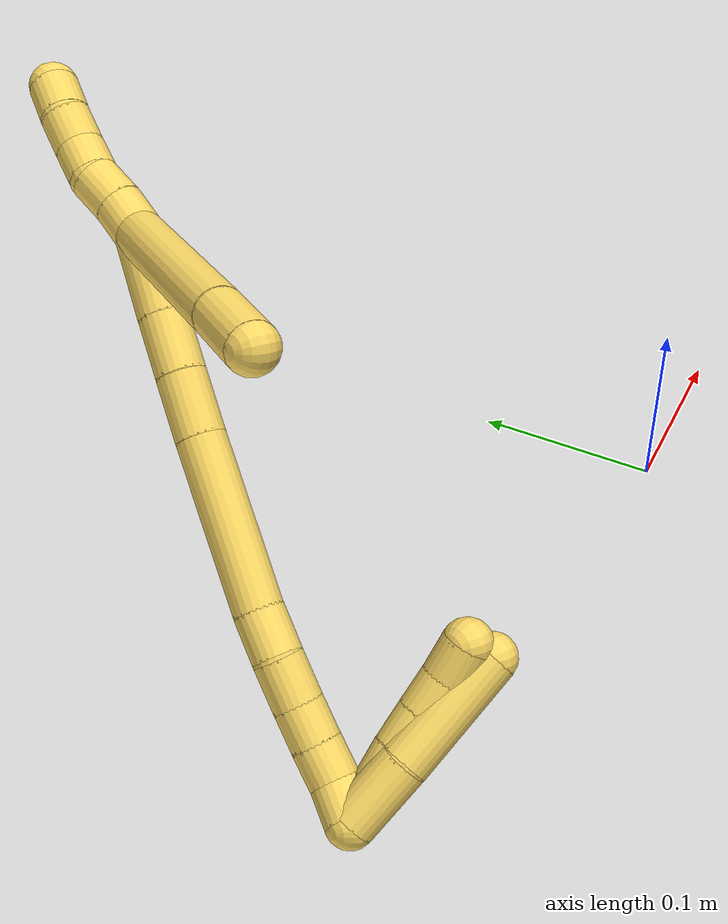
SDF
<sdf version="1.7">
 <world name="default">
  <model name="5">
   <static>0</static>
   <link name="5">
    <collision name="collision-cylinder-e_1_2_8">
     <pose>0.009123 -0.054301 0.015988 1.28445 0.15979 0.119636</pose>
     <geometry><cylinder><radius>0.0125</radius><length>0.114672</length></cylinder></geometry>
     <surface>
      <friction><ode><mu>1.16</mu><mu2>1.16</mu2><slip1>0</slip1><slip2>0</slip2></ode></friction>
      <contact><ode><kp>1e+06</kp><kd>1</kd><max_vel>0</max_vel><min_depth>0.001</min_depth></ode></contact>
     </surface>
    </collision>
    <visual name="visual-cylinder-e_1_2_8">
     <pose>0.009123 -0.054301 0.015988 1.28445 0.15979 0.119636</pose>
     <geometry><cylinder><radius>0.0125</radius><length>0.114672</length></cylinder></geometry>
     <material><ambient>1 0.858824 0.4 1</ambient></material>
    </visual>
    <collision name="collision-cylinder-e_2_8_6">
     <pose>0.019926 -0.125675 0.03618 1.32939 0.095276 0.074686</pose>
     <geometry><cylinder><radius>0.0125</radius><length>0.035328</length></cylinder></geometry>
     <surface>
      <friction><ode><mu>1.16</mu><mu2>1.16</mu2><slip1>0</slip1><slip2>0</slip2></ode></friction>
      <contact><ode><kp>1e+06</kp><kd>1</kd><max_vel>0</max_vel><min_depth>0.001</min_depth></ode></contact>
     </surface>
    </collision>
    <visual name="visual-cylinder-e_2_8_6">
     <pose>0.019926 -0.125675 0.03618 1.32939 0.095276 0.074686</pose>
     <geometry><cylinder><radius>0.0125</radius><length>0.035328</length></cylinder></geometry>
     <material><ambient>1 0.858824 0.4 1</ambient></material>
    </visual>
    <collision name="collision-cylinder-e_1_2_9">
     <pose>0.003518 0.009348 0.000493 -1.51814 0.359475 -0.341392</pose>
     <geometry><cylinder><radius>0.0125</radius><length>0.02</length></cylinder></geometry>
     <surface>
      <friction><ode><mu>1.16</mu><mu2>1.16</mu2><slip1>0</slip1><slip2>0</slip2></ode></friction>
      <contact><ode><kp>1e+06</kp><kd>1</kd><max_vel>0</max_vel><min_depth>0.001</min_depth></ode></contact>
     </surface>
    </collision>
    <visual name="visual-cylinder-e_1_2_9">
     <pose>0.003518 0.009348 0.000493 -1.51814 0.359475 -0.341392</pose>
     <geometry><cylinder><radius>0.0125</radius><length>0.02</length></cylinder></geometry>
     <material><ambient>1 0.858824 0.4 1</ambient></material>
    </visual>
    <collision name="collision-cylinder-e_2_9_10">
     <pose>0.010321 0.027976 0.002743 -1.38363 0.334744 -0.278111</pose>
     <geometry><cylinder><radius>0.0125</radius><length>0.02</length></cylinder></geometry>
     <surface>
      <friction><ode><mu>1.16</mu><mu2>1.16</mu2><slip1>0</slip1><slip2>0</slip2></ode></friction>
      <contact><ode><kp>1e+06</kp><kd>1</kd><max_vel>0</max_vel><min_depth>0.001</min_depth></ode></contact>
     </surface>
    </collision>
    <visual name="visual-cylinder-e_2_9_10">
     <pose>0.010321 0.027976 0.002743 -1.38363 0.334744 -0.278111</pose>
     <geometry><cylinder><radius>0.0125</radius><length>0.02</length></cylinder></geometry>
     <material><ambient>1 0.858824 0.4 1</ambient></material>
    </visual>
    <collision name="collision-cylinder-e_3_10_11">
     <pose>0.017047 0.046557 0.00322 -1.70754 0.351248 -0.401596</pose>
     <geometry><cylinder><radius>0.0125</radius><length>0.02</length></cylinder></geometry>
     <surface>
      <friction><ode><mu>1.16</mu><mu2>1.16</mu2><slip1>0</slip1><slip2>0</slip2></ode></friction>
      <contact><ode><kp>1e+06</kp><kd>1</kd><max_vel>0</max_vel><min_depth>0.001</min_depth></ode></contact>
     </surface>
    </collision>
    <visual name="visual-cylinder-e_3_10_11">
     <pose>0.017047 0.046557 0.00322 -1.70754 0.351248 -0.401596</pose>
     <geometry><cylinder><radius>0.0125</radius><length>0.02</length></cylinder></geometry>
     <material><ambient>1 0.858824 0.4 1</ambient></material>
    </visual>
    <collision name="collision-cylinder-e_4_11_12">
     <pose>0.02581 0.064325 0.001891 -1.57664 0.561289 -0.564406</pose>
     <geometry><cylinder><radius>0.0125</radius><length>0.02</length></cylinder></geometry>
     <surface>
      <friction><ode><mu>1.16</mu><mu2>1.16</mu2><slip1>0</slip1><slip2>0</slip2></ode></friction>
      <contact><ode><kp>1e+06</kp><kd>1</kd><max_vel>0</max_vel><min_depth>0.001</min_depth></ode></contact>
     </surface>
    </collision>
    <visual name="visual-cylinder-e_4_11_12">
     <pose>0.02581 0.064325 0.001891 -1.57664 0.561289 -0.564406</pose>
     <geometry><cylinder><radius>0.0125</radius><length>0.02</length></cylinder></geometry>
     <material><ambient>1 0.858824 0.4 1</ambient></material>
    </visual>
    <collision name="collision-cylinder-e_5_12_5">
     <pose>0.035278 0.08176 0.000301 -1.74086 0.427409 -0.503977</pose>
     <geometry><cylinder><radius>0.0125</radius><length>0.02</length></cylinder></geometry>
     <surface>
      <friction><ode><mu>1.16</mu><mu2>1.16</mu2><slip1>0</slip1><slip2>0</slip2></ode></friction>
      <contact><ode><kp>1e+06</kp><kd>1</kd><max_vel>0</max_vel><min_depth>0.001</min_depth></ode></contact>
     </surface>
    </collision>
    <visual name="visual-cylinder-e_5_12_5">
     <pose>0.035278 0.08176 0.000301 -1.74086 0.427409 -0.503977</pose>
     <geometry><cylinder><radius>0.0125</radius><length>0.02</length></cylinder></geometry>
     <material><ambient>1 0.858824 0.4 1</ambient></material>
    </visual>
    <collision name="collision-cylinder-e_1_2_13">
     <pose>-0.014289 -0.015883 0.001438 1.4805 -0.730588 -0.672269</pose>
     <geometry><cylinder><radius>0.0125</radius><length>0.042825</length></cylinder></geometry>
     <surface>
      <friction><ode><mu>1.16</mu><mu2>1.16</mu2><slip1>0</slip1><slip2>0</slip2></ode></friction>
      <contact><ode><kp>1e+06</kp><kd>1</kd><max_vel>0</max_vel><min_depth>0.001</min_depth></ode></contact>
     </surface>
    </collision>
    <visual name="visual-cylinder-e_1_2_13">
     <pose>-0.014289 -0.015883 0.001438 1.4805 -0.730588 -0.672269</pose>
     <geometry><cylinder><radius>0.0125</radius><length>0.042825</length></cylinder></geometry>
     <material><ambient>1 0.858824 0.4 1</ambient></material>
    </visual>
    <collision name="collision-cylinder-e_2_13_14">
     <pose>-0.038298 -0.043378 0.003953 1.47833 -0.694864 -0.637667</pose>
     <geometry><cylinder><radius>0.0125</radius><length>0.030364</length></cylinder></geometry>
     <surface>
      <friction><ode><mu>1.16</mu><mu2>1.16</mu2><slip1>0</slip1><slip2>0</slip2></ode></friction>
      <contact><ode><kp>1e+06</kp><kd>1</kd><max_vel>0</max_vel><min_depth>0.001</min_depth></ode></contact>
     </surface>
    </collision>
    <visual name="visual-cylinder-e_2_13_14">
     <pose>-0.038298 -0.043378 0.003953 1.47833 -0.694864 -0.637667</pose>
     <geometry><cylinder><radius>0.0125</radius><length>0.030364</length></cylinder></geometry>
     <material><ambient>1 0.858824 0.4 1</ambient></material>
    </visual>
    <collision name="collision-cylinder-e_3_14_15">
     <pose>-0.05866 -0.067008 0.005783 1.50821 -0.723676 -0.683175</pose>
     <geometry><cylinder><radius>0.0125</radius><length>0.032139</length></cylinder></geometry>
     <surface>
      <friction><ode><mu>1.16</mu><mu2>1.16</mu2><slip1>0</slip1><slip2>0</slip2></ode></friction>
      <contact><ode><kp>1e+06</kp><kd>1</kd><max_vel>0</max_vel><min_depth>0.001</min_depth></ode></contact>
     </surface>
    </collision>
    <visual name="visual-cylinder-e_3_14_15">
     <pose>-0.05866 -0.067008 0.005783 1.50821 -0.723676 -0.683175</pose>
     <geometry><cylinder><radius>0.0125</radius><length>0.032139</length></cylinder></geometry>
     <material><ambient>1 0.858824 0.4 1</ambient></material>
    </visual>
    <collision name="collision-cylinder-e_4_15_16">
     <pose>-0.09786 -0.111859 0.007775 1.53308 -0.715577 -0.691176</pose>
     <geometry><cylinder><radius>0.0125</radius><length>0.087067</length></cylinder></geometry>
     <surface>
      <friction><ode><mu>1.16</mu><mu2>1.16</mu2><slip1>0</slip1><slip2>0</slip2></ode></friction>
      <contact><ode><kp>1e+06</kp><kd>1</kd><max_vel>0</max_vel><min_depth>0.001</min_depth></ode></contact>
     </surface>
    </collision>
    <visual name="visual-cylinder-e_4_15_16">
     <pose>-0.09786 -0.111859 0.007775 1.53308 -0.715577 -0.691176</pose>
     <geometry><cylinder><radius>0.0125</radius><length>0.087067</length></cylinder></geometry>
     <material><ambient>1 0.858824 0.4 1</ambient></material>
    </visual>
    <collision name="collision-cylinder-e_5_16_17">
     <pose>-0.133294 -0.154414 0.009215 1.55014 -0.615283 -0.603461</pose>
     <geometry><cylinder><radius>0.0125</radius><length>0.023819</length></cylinder></geometry>
     <surface>
      <friction><ode><mu>1.16</mu><mu2>1.16</mu2><slip1>0</slip1><slip2>0</slip2></ode></friction>
      <contact><ode><kp>1e+06</kp><kd>1</kd><max_vel>0</max_vel><min_depth>0.001</min_depth></ode></contact>
     </surface>
    </collision>
    <visual name="visual-cylinder-e_5_16_17">
     <pose>-0.133294 -0.154414 0.009215 1.55014 -0.615283 -0.603461</pose>
     <geometry><cylinder><radius>0.0125</radius><length>0.023819</length></cylinder></geometry>
     <material><ambient>1 0.858824 0.4 1</ambient></material>
    </visual>
    <collision name="collision-cylinder-e_6_17_18">
     <pose>-0.14811 -0.17277 0.00827 1.70275 -0.739364 -0.83291</pose>
     <geometry><cylinder><radius>0.0125</radius><length>0.023571</length></cylinder></geometry>
     <surface>
      <friction><ode><mu>1.16</mu><mu2>1.16</mu2><slip1>0</slip1><slip2>0</slip2></ode></friction>
      <contact><ode><kp>1e+06</kp><kd>1</kd><max_vel>0</max_vel><min_depth>0.001</min_depth></ode></contact>
     </surface>
    </collision>
    <visual name="visual-cylinder-e_6_17_18">
     <pose>-0.14811 -0.17277 0.00827 1.70275 -0.739364 -0.83291</pose>
     <geometry><cylinder><radius>0.0125</radius><length>0.023571</length></cylinder></geometry>
     <material><ambient>1 0.858824 0.4 1</ambient></material>
    </visual>
    <collision name="collision-cylinder-e_7_18_19">
     <pose>-0.162478 -0.189093 0.006246 1.68449 -0.69299 -0.768994</pose>
     <geometry><cylinder><radius>0.0125</radius><length>0.020122</length></cylinder></geometry>
     <surface>
      <friction><ode><mu>1.16</mu><mu2>1.16</mu2><slip1>0</slip1><slip2>0</slip2></ode></friction>
      <contact><ode><kp>1e+06</kp><kd>1</kd><max_vel>0</max_vel><min_depth>0.001</min_depth></ode></contact>
     </surface>
    </collision>
    <visual name="visual-cylinder-e_7_18_19">
     <pose>-0.162478 -0.189093 0.006246 1.68449 -0.69299 -0.768994</pose>
     <geometry><cylinder><radius>0.0125</radius><length>0.020122</length></cylinder></geometry>
     <material><ambient>1 0.858824 0.4 1</ambient></material>
    </visual>
    <collision name="collision-cylinder-e_8_19_20">
     <pose>-0.174913 -0.204763 0.004555 1.67238 -0.642797 -0.706305</pose>
     <geometry><cylinder><radius>0.0125</radius><length>0.020044</length></cylinder></geometry>
     <surface>
      <friction><ode><mu>1.16</mu><mu2>1.16</mu2><slip1>0</slip1><slip2>0</slip2></ode></friction>
      <contact><ode><kp>1e+06</kp><kd>1</kd><max_vel>0</max_vel><min_depth>0.001</min_depth></ode></contact>
     </surface>
    </collision>
    <visual name="visual-cylinder-e_8_19_20">
     <pose>-0.174913 -0.204763 0.004555 1.67238 -0.642797 -0.706305</pose>
     <geometry><cylinder><radius>0.0125</radius><length>0.020044</length></cylinder></geometry>
     <material><ambient>1 0.858824 0.4 1</ambient></material>
    </visual>
    <collision name="collision-cylinder-e_9_20_1">
     <pose>-0.184964 -0.221757 0.005443 1.38417 -0.415235 -0.345713</pose>
     <geometry><cylinder><radius>0.0125</radius><length>0.02005</length></cylinder></geometry>
     <surface>
      <friction><ode><mu>1.16</mu><mu2>1.16</mu2><slip1>0</slip1><slip2>0</slip2></ode></friction>
      <contact><ode><kp>1e+06</kp><kd>1</kd><max_vel>0</max_vel><min_depth>0.001</min_depth></ode></contact>
     </surface>
    </collision>
    <visual name="visual-cylinder-e_9_20_1">
     <pose>-0.184964 -0.221757 0.005443 1.38417 -0.415235 -0.345713</pose>
     <geometry><cylinder><radius>0.0125</radius><length>0.02005</length></cylinder></geometry>
     <material><ambient>1 0.858824 0.4 1</ambient></material>
    </visual>
    <collision name="collision-cylinder-e_1_1_21">
     <pose>-0.183142 -0.22911 -0.000781 -2.93499 0.626898 -2.52249</pose>
     <geometry><cylinder><radius>0.0125</radius><length>0.02</length></cylinder></geometry>
     <surface>
      <friction><ode><mu>1.16</mu><mu2>1.16</mu2><slip1>0</slip1><slip2>0</slip2></ode></friction>
      <contact><ode><kp>1e+06</kp><kd>1</kd><max_vel>0</max_vel><min_depth>0.001</min_depth></ode></contact>
     </surface>
    </collision>
    <visual name="visual-cylinder-e_1_1_21">
     <pose>-0.183142 -0.22911 -0.000781 -2.93499 0.626898 -2.52249</pose>
     <geometry><cylinder><radius>0.0125</radius><length>0.02</length></cylinder></geometry>
     <material><ambient>1 0.858824 0.4 1</ambient></material>
    </visual>
    <collision name="collision-cylinder-e_2_21_22">
     <pose>-0.169247 -0.226067 -0.014507 -2.90774 0.932089 -2.68276</pose>
     <geometry><cylinder><radius>0.0125</radius><length>0.02</length></cylinder></geometry>
     <surface>
      <friction><ode><mu>1.16</mu><mu2>1.16</mu2><slip1>0</slip1><slip2>0</slip2></ode></friction>
      <contact><ode><kp>1e+06</kp><kd>1</kd><max_vel>0</max_vel><min_depth>0.001</min_depth></ode></contact>
     </surface>
    </collision>
    <visual name="visual-cylinder-e_2_21_22">
     <pose>-0.169247 -0.226067 -0.014507 -2.90774 0.932089 -2.68276</pose>
     <geometry><cylinder><radius>0.0125</radius><length>0.02</length></cylinder></geometry>
     <material><ambient>1 0.858824 0.4 1</ambient></material>
    </visual>
    <collision name="collision-cylinder-e_3_22_23">
     <pose>-0.153068 -0.224052 -0.026065 -3.03209 0.952862 -2.93</pose>
     <geometry><cylinder><radius>0.0125</radius><length>0.02</length></cylinder></geometry>
     <surface>
      <friction><ode><mu>1.16</mu><mu2>1.16</mu2><slip1>0</slip1><slip2>0</slip2></ode></friction>
      <contact><ode><kp>1e+06</kp><kd>1</kd><max_vel>0</max_vel><min_depth>0.001</min_depth></ode></contact>
     </surface>
    </collision>
    <visual name="visual-cylinder-e_3_22_23">
     <pose>-0.153068 -0.224052 -0.026065 -3.03209 0.952862 -2.93</pose>
     <geometry><cylinder><radius>0.0125</radius><length>0.02</length></cylinder></geometry>
     <material><ambient>1 0.858824 0.4 1</ambient></material>
    </visual>
    <collision name="collision-cylinder-e_4_23_24">
     <pose>-0.136537 -0.223096 -0.037271 -3.08244 0.993559 -3.03255</pose>
     <geometry><cylinder><radius>0.0125</radius><length>0.02</length></cylinder></geometry>
     <surface>
      <friction><ode><mu>1.16</mu><mu2>1.16</mu2><slip1>0</slip1><slip2>0</slip2></ode></friction>
      <contact><ode><kp>1e+06</kp><kd>1</kd><max_vel>0</max_vel><min_depth>0.001</min_depth></ode></contact>
     </surface>
    </collision>
    <visual name="visual-cylinder-e_4_23_24">
     <pose>-0.136537 -0.223096 -0.037271 -3.08244 0.993559 -3.03255</pose>
     <geometry><cylinder><radius>0.0125</radius><length>0.02</length></cylinder></geometry>
     <material><ambient>1 0.858824 0.4 1</ambient></material>
    </visual>
    <collision name="collision-cylinder-e_5_24_4">
     <pose>-0.118993 -0.222775 -0.046721 3.14135 1.15898 3.14122</pose>
     <geometry><cylinder><radius>0.0125</radius><length>0.02</length></cylinder></geometry>
     <surface>
      <friction><ode><mu>1.16</mu><mu2>1.16</mu2><slip1>0</slip1><slip2>0</slip2></ode></friction>
      <contact><ode><kp>1e+06</kp><kd>1</kd><max_vel>0</max_vel><min_depth>0.001</min_depth></ode></contact>
     </surface>
    </collision>
    <visual name="visual-cylinder-e_5_24_4">
     <pose>-0.118993 -0.222775 -0.046721 3.14135 1.15898 3.14122</pose>
     <geometry><cylinder><radius>0.0125</radius><length>0.02</length></cylinder></geometry>
     <material><ambient>1 0.858824 0.4 1</ambient></material>
    </visual>
    <collision name="collision-cylinder-e_1_1_25">
     <pose>-0.1749 -0.231639 -0.00471 3.06847 0.87065 2.98463</pose>
     <geometry><cylinder><radius>0.0125</radius><length>0.036897</length></cylinder></geometry>
     <surface>
      <friction><ode><mu>1.16</mu><mu2>1.16</mu2><slip1>0</slip1><slip2>0</slip2></ode></friction>
      <contact><ode><kp>1e+06</kp><kd>1</kd><max_vel>0</max_vel><min_depth>0.001</min_depth></ode></contact>
     </surface>
    </collision>
    <visual name="visual-cylinder-e_1_1_25">
     <pose>-0.1749 -0.231639 -0.00471 3.06847 0.87065 2.98463</pose>
     <geometry><cylinder><radius>0.0125</radius><length>0.036897</length></cylinder></geometry>
     <material><ambient>1 0.858824 0.4 1</ambient></material>
    </visual>
    <collision name="collision-cylinder-e_2_25_3">
     <pose>-0.138533 -0.231654 -0.03891 -3.10342 0.783094 -3.04918</pose>
     <geometry><cylinder><radius>0.0125</radius><length>0.063103</length></cylinder></geometry>
     <surface>
      <friction><ode><mu>1.16</mu><mu2>1.16</mu2><slip1>0</slip1><slip2>0</slip2></ode></friction>
      <contact><ode><kp>1e+06</kp><kd>1</kd><max_vel>0</max_vel><min_depth>0.001</min_depth></ode></contact>
     </surface>
    </collision>
    <visual name="visual-cylinder-e_2_25_3">
     <pose>-0.138533 -0.231654 -0.03891 -3.10342 0.783094 -3.04918</pose>
     <geometry><cylinder><radius>0.0125</radius><length>0.063103</length></cylinder></geometry>
     <material><ambient>1 0.858824 0.4 1</ambient></material>
    </visual>
    <collision name="collision-sphere-3">
     <pose>-0.116274 -0.230801 -0.061256 0 -0 0</pose>
     <geometry><sphere><radius>0.0125</radius></sphere></geometry>
     <surface>
      <friction><ode><mu>1.16</mu><mu2>1.16</mu2><slip1>0</slip1><slip2>0</slip2></ode></friction>
      <contact><ode><kp>1e+06</kp><kd>1</kd><max_vel>0</max_vel><min_depth>0.001</min_depth></ode></contact>
     </surface>
    </collision>
    <visual name="visual-sphere-3">
     <pose>-0.116274 -0.230801 -0.061256 0 -0 0</pose>
     <geometry><sphere><radius>0.0125</radius></sphere></geometry>
     <material><ambient>1 0.858824 0.4 1</ambient></material>
    </visual>
    <collision name="collision-sphere-25">
     <pose>-0.160792 -0.232508 -0.016565 0 -0 0</pose>
     <geometry><sphere><radius>0.0125</radius></sphere></geometry>
     <surface>
      <friction><ode><mu>1.16</mu><mu2>1.16</mu2><slip1>0</slip1><slip2>0</slip2></ode></friction>
      <contact><ode><kp>1e+06</kp><kd>1</kd><max_vel>0</max_vel><min_depth>0.001</min_depth></ode></contact>
     </surface>
    </collision>
    <visual name="visual-sphere-25">
     <pose>-0.160792 -0.232508 -0.016565 0 -0 0</pose>
     <geometry><sphere><radius>0.0125</radius></sphere></geometry>
     <material><ambient>1 0.858824 0.4 1</ambient></material>
    </visual>
    <collision name="collision-sphere-4">
     <pose>-0.109829 -0.222776 -0.050724 0 -0 0</pose>
     <geometry><sphere><radius>0.0125</radius></sphere></geometry>
     <surface>
      <friction><ode><mu>1.16</mu><mu2>1.16</mu2><slip1>0</slip1><slip2>0</slip2></ode></friction>
      <contact><ode><kp>1e+06</kp><kd>1</kd><max_vel>0</max_vel><min_depth>0.001</min_depth></ode></contact>
     </surface>
    </collision>
    <visual name="visual-sphere-4">
     <pose>-0.109829 -0.222776 -0.050724 0 -0 0</pose>
     <geometry><sphere><radius>0.0125</radius></sphere></geometry>
     <material><ambient>1 0.858824 0.4 1</ambient></material>
    </visual>
    <collision name="collision-sphere-24">
     <pose>-0.128157 -0.222774 -0.042719 0 -0 0</pose>
     <geometry><sphere><radius>0.0125</radius></sphere></geometry>
     <surface>
      <friction><ode><mu>1.16</mu><mu2>1.16</mu2><slip1>0</slip1><slip2>0</slip2></ode></friction>
      <contact><ode><kp>1e+06</kp><kd>1</kd><max_vel>0</max_vel><min_depth>0.001</min_depth></ode></contact>
     </surface>
    </collision>
    <visual name="visual-sphere-24">
     <pose>-0.128157 -0.222774 -0.042719 0 -0 0</pose>
     <geometry><sphere><radius>0.0125</radius></sphere></geometry>
     <material><ambient>1 0.858824 0.4 1</ambient></material>
    </visual>
    <collision name="collision-sphere-23">
     <pose>-0.144917 -0.223419 -0.031824 0 -0 0</pose>
     <geometry><sphere><radius>0.0125</radius></sphere></geometry>
     <surface>
      <friction><ode><mu>1.16</mu><mu2>1.16</mu2><slip1>0</slip1><slip2>0</slip2></ode></friction>
      <contact><ode><kp>1e+06</kp><kd>1</kd><max_vel>0</max_vel><min_depth>0.001</min_depth></ode></contact>
     </surface>
    </collision>
    <visual name="visual-sphere-23">
     <pose>-0.144917 -0.223419 -0.031824 0 -0 0</pose>
     <geometry><sphere><radius>0.0125</radius></sphere></geometry>
     <material><ambient>1 0.858824 0.4 1</ambient></material>
    </visual>
    <collision name="collision-sphere-22">
     <pose>-0.161218 -0.224685 -0.020306 0 -0 0</pose>
     <geometry><sphere><radius>0.0125</radius></sphere></geometry>
     <surface>
      <friction><ode><mu>1.16</mu><mu2>1.16</mu2><slip1>0</slip1><slip2>0</slip2></ode></friction>
      <contact><ode><kp>1e+06</kp><kd>1</kd><max_vel>0</max_vel><min_depth>0.001</min_depth></ode></contact>
     </surface>
    </collision>
    <visual name="visual-sphere-22">
     <pose>-0.161218 -0.224685 -0.020306 0 -0 0</pose>
     <geometry><sphere><radius>0.0125</radius></sphere></geometry>
     <material><ambient>1 0.858824 0.4 1</ambient></material>
    </visual>
    <collision name="collision-sphere-21">
     <pose>-0.177276 -0.227448 -0.008707 0 -0 0</pose>
     <geometry><sphere><radius>0.0125</radius></sphere></geometry>
     <surface>
      <friction><ode><mu>1.16</mu><mu2>1.16</mu2><slip1>0</slip1><slip2>0</slip2></ode></friction>
      <contact><ode><kp>1e+06</kp><kd>1</kd><max_vel>0</max_vel><min_depth>0.001</min_depth></ode></contact>
     </surface>
    </collision>
    <visual name="visual-sphere-21">
     <pose>-0.177276 -0.227448 -0.008707 0 -0 0</pose>
     <geometry><sphere><radius>0.0125</radius></sphere></geometry>
     <material><ambient>1 0.858824 0.4 1</ambient></material>
    </visual>
    <collision name="collision-sphere-1">
     <pose>-0.189008 -0.230771 0.007145 0 -0 0</pose>
     <geometry><sphere><radius>0.0125</radius></sphere></geometry>
     <surface>
      <friction><ode><mu>1.16</mu><mu2>1.16</mu2><slip1>0</slip1><slip2>0</slip2></ode></friction>
      <contact><ode><kp>1e+06</kp><kd>1</kd><max_vel>0</max_vel><min_depth>0.001</min_depth></ode></contact>
     </surface>
    </collision>
    <visual name="visual-sphere-1">
     <pose>-0.189008 -0.230771 0.007145 0 -0 0</pose>
     <geometry><sphere><radius>0.0125</radius></sphere></geometry>
     <material><ambient>1 0.858824 0.4 1</ambient></material>
    </visual>
    <collision name="collision-sphere-11">
     <pose>0.020488 0.055859 0.001941 0 -0 0</pose>
     <geometry><sphere><radius>0.0125</radius></sphere></geometry>
     <surface>
      <friction><ode><mu>1.16</mu><mu2>1.16</mu2><slip1>0</slip1><slip2>0</slip2></ode></friction>
      <contact><ode><kp>1e+06</kp><kd>1</kd><max_vel>0</max_vel><min_depth>0.001</min_depth></ode></contact>
     </surface>
    </collision>
    <visual name="visual-sphere-11">
     <pose>0.020488 0.055859 0.001941 0 -0 0</pose>
     <geometry><sphere><radius>0.0125</radius></sphere></geometry>
     <material><ambient>1 0.858824 0.4 1</ambient></material>
    </visual>
    <collision name="collision-sphere-10">
     <pose>0.013606 0.037256 0.0045 0 -0 0</pose>
     <geometry><sphere><radius>0.0125</radius></sphere></geometry>
     <surface>
      <friction><ode><mu>1.16</mu><mu2>1.16</mu2><slip1>0</slip1><slip2>0</slip2></ode></friction>
      <contact><ode><kp>1e+06</kp><kd>1</kd><max_vel>0</max_vel><min_depth>0.001</min_depth></ode></contact>
     </surface>
    </collision>
    <visual name="visual-sphere-10">
     <pose>0.013606 0.037256 0.0045 0 -0 0</pose>
     <geometry><sphere><radius>0.0125</radius></sphere></geometry>
     <material><ambient>1 0.858824 0.4 1</ambient></material>
    </visual>
    <collision name="collision-sphere-6">
     <pose>0.021606 -0.142749 0.040384 0 -0 0</pose>
     <geometry><sphere><radius>0.0125</radius></sphere></geometry>
     <surface>
      <friction><ode><mu>1.16</mu><mu2>1.16</mu2><slip1>0</slip1><slip2>0</slip2></ode></friction>
      <contact><ode><kp>1e+06</kp><kd>1</kd><max_vel>0</max_vel><min_depth>0.001</min_depth></ode></contact>
     </surface>
    </collision>
    <visual name="visual-sphere-6">
     <pose>0.021606 -0.142749 0.040384 0 -0 0</pose>
     <geometry><sphere><radius>0.0125</radius></sphere></geometry>
     <material><ambient>1 0.858824 0.4 1</ambient></material>
    </visual>
    <collision name="collision-sphere-9">
     <pose>0.007036 0.018696 0.000985 0 -0 0</pose>
     <geometry><sphere><radius>0.0125</radius></sphere></geometry>
     <surface>
      <friction><ode><mu>1.16</mu><mu2>1.16</mu2><slip1>0</slip1><slip2>0</slip2></ode></friction>
      <contact><ode><kp>1e+06</kp><kd>1</kd><max_vel>0</max_vel><min_depth>0.001</min_depth></ode></contact>
     </surface>
    </collision>
    <visual name="visual-sphere-9">
     <pose>0.007036 0.018696 0.000985 0 -0 0</pose>
     <geometry><sphere><radius>0.0125</radius></sphere></geometry>
     <material><ambient>1 0.858824 0.4 1</ambient></material>
    </visual>
    <collision name="collision-sphere-2">
     <geometry><sphere><radius>0.0125</radius></sphere></geometry>
     <surface>
      <friction><ode><mu>1.16</mu><mu2>1.16</mu2><slip1>0</slip1><slip2>0</slip2></ode></friction>
      <contact><ode><kp>1e+06</kp><kd>1</kd><max_vel>0</max_vel><min_depth>0.001</min_depth></ode></contact>
     </surface>
    </collision>
    <visual name="visual-sphere-2">
     <geometry><sphere><radius>0.0125</radius></sphere></geometry>
     <material><ambient>1 0.858824 0.4 1</ambient></material>
    </visual>
    <collision name="collision-sphere-19">
     <pose>-0.168906 -0.196783 0.005368 0 -0 0</pose>
     <geometry><sphere><radius>0.0125</radius></sphere></geometry>
     <surface>
      <friction><ode><mu>1.16</mu><mu2>1.16</mu2><slip1>0</slip1><slip2>0</slip2></ode></friction>
      <contact><ode><kp>1e+06</kp><kd>1</kd><max_vel>0</max_vel><min_depth>0.001</min_depth></ode></contact>
     </surface>
    </collision>
    <visual name="visual-sphere-19">
     <pose>-0.168906 -0.196783 0.005368 0 -0 0</pose>
     <geometry><sphere><radius>0.0125</radius></sphere></geometry>
     <material><ambient>1 0.858824 0.4 1</ambient></material>
    </visual>
    <collision name="collision-sphere-8">
     <pose>0.018246 -0.108601 0.031977 0 -0 0</pose>
     <geometry><sphere><radius>0.0125</radius></sphere></geometry>
     <surface>
      <friction><ode><mu>1.16</mu><mu2>1.16</mu2><slip1>0</slip1><slip2>0</slip2></ode></friction>
      <contact><ode><kp>1e+06</kp><kd>1</kd><max_vel>0</max_vel><min_depth>0.001</min_depth></ode></contact>
     </surface>
    </collision>
    <visual name="visual-sphere-8">
     <pose>0.018246 -0.108601 0.031977 0 -0 0</pose>
     <geometry><sphere><radius>0.0125</radius></sphere></geometry>
     <material><ambient>1 0.858824 0.4 1</ambient></material>
    </visual>
    <collision name="collision-sphere-12">
     <pose>0.031133 0.07279 0.001842 0 -0 0</pose>
     <geometry><sphere><radius>0.0125</radius></sphere></geometry>
     <surface>
      <friction><ode><mu>1.16</mu><mu2>1.16</mu2><slip1>0</slip1><slip2>0</slip2></ode></friction>
      <contact><ode><kp>1e+06</kp><kd>1</kd><max_vel>0</max_vel><min_depth>0.001</min_depth></ode></contact>
     </surface>
    </collision>
    <visual name="visual-sphere-12">
     <pose>0.031133 0.07279 0.001842 0 -0 0</pose>
     <geometry><sphere><radius>0.0125</radius></sphere></geometry>
     <material><ambient>1 0.858824 0.4 1</ambient></material>
    </visual>
    <collision name="collision-sphere-5">
     <pose>0.039423 0.090729 -0.001239 0 -0 0</pose>
     <geometry><sphere><radius>0.0125</radius></sphere></geometry>
     <surface>
      <friction><ode><mu>1.16</mu><mu2>1.16</mu2><slip1>0</slip1><slip2>0</slip2></ode></friction>
      <contact><ode><kp>1e+06</kp><kd>1</kd><max_vel>0</max_vel><min_depth>0.001</min_depth></ode></contact>
     </surface>
    </collision>
    <visual name="visual-sphere-5">
     <pose>0.039423 0.090729 -0.001239 0 -0 0</pose>
     <geometry><sphere><radius>0.0125</radius></sphere></geometry>
     <material><ambient>1 0.858824 0.4 1</ambient></material>
    </visual>
    <collision name="collision-sphere-13">
     <pose>-0.028578 -0.031766 0.002876 0 -0 0</pose>
     <geometry><sphere><radius>0.0125</radius></sphere></geometry>
     <surface>
      <friction><ode><mu>1.16</mu><mu2>1.16</mu2><slip1>0</slip1><slip2>0</slip2></ode></friction>
      <contact><ode><kp>1e+06</kp><kd>1</kd><max_vel>0</max_vel><min_depth>0.001</min_depth></ode></contact>
     </surface>
    </collision>
    <visual name="visual-sphere-13">
     <pose>-0.028578 -0.031766 0.002876 0 -0 0</pose>
     <geometry><sphere><radius>0.0125</radius></sphere></geometry>
     <material><ambient>1 0.858824 0.4 1</ambient></material>
    </visual>
    <collision name="collision-sphere-14">
     <pose>-0.048019 -0.05499 0.00503 0 -0 0</pose>
     <geometry><sphere><radius>0.0125</radius></sphere></geometry>
     <surface>
      <friction><ode><mu>1.16</mu><mu2>1.16</mu2><slip1>0</slip1><slip2>0</slip2></ode></friction>
      <contact><ode><kp>1e+06</kp><kd>1</kd><max_vel>0</max_vel><min_depth>0.001</min_depth></ode></contact>
     </surface>
    </collision>
    <visual name="visual-sphere-14">
     <pose>-0.048019 -0.05499 0.00503 0 -0 0</pose>
     <geometry><sphere><radius>0.0125</radius></sphere></geometry>
     <material><ambient>1 0.858824 0.4 1</ambient></material>
    </visual>
    <collision name="collision-sphere-15">
     <pose>-0.0693 -0.079027 0.006536 0 -0 0</pose>
     <geometry><sphere><radius>0.0125</radius></sphere></geometry>
     <surface>
      <friction><ode><mu>1.16</mu><mu2>1.16</mu2><slip1>0</slip1><slip2>0</slip2></ode></friction>
      <contact><ode><kp>1e+06</kp><kd>1</kd><max_vel>0</max_vel><min_depth>0.001</min_depth></ode></contact>
     </surface>
    </collision>
    <visual name="visual-sphere-15">
     <pose>-0.0693 -0.079027 0.006536 0 -0 0</pose>
     <geometry><sphere><radius>0.0125</radius></sphere></geometry>
     <material><ambient>1 0.858824 0.4 1</ambient></material>
    </visual>
    <collision name="collision-sphere-16">
     <pose>-0.126421 -0.144691 0.009014 0 -0 0</pose>
     <geometry><sphere><radius>0.0125</radius></sphere></geometry>
     <surface>
      <friction><ode><mu>1.16</mu><mu2>1.16</mu2><slip1>0</slip1><slip2>0</slip2></ode></friction>
      <contact><ode><kp>1e+06</kp><kd>1</kd><max_vel>0</max_vel><min_depth>0.001</min_depth></ode></contact>
     </surface>
    </collision>
    <visual name="visual-sphere-16">
     <pose>-0.126421 -0.144691 0.009014 0 -0 0</pose>
     <geometry><sphere><radius>0.0125</radius></sphere></geometry>
     <material><ambient>1 0.858824 0.4 1</ambient></material>
    </visual>
    <collision name="collision-sphere-17">
     <pose>-0.140168 -0.164137 0.009416 0 -0 0</pose>
     <geometry><sphere><radius>0.0125</radius></sphere></geometry>
     <surface>
      <friction><ode><mu>1.16</mu><mu2>1.16</mu2><slip1>0</slip1><slip2>0</slip2></ode></friction>
      <contact><ode><kp>1e+06</kp><kd>1</kd><max_vel>0</max_vel><min_depth>0.001</min_depth></ode></contact>
     </surface>
    </collision>
    <visual name="visual-sphere-17">
     <pose>-0.140168 -0.164137 0.009416 0 -0 0</pose>
     <geometry><sphere><radius>0.0125</radius></sphere></geometry>
     <material><ambient>1 0.858824 0.4 1</ambient></material>
    </visual>
    <collision name="collision-sphere-18">
     <pose>-0.156051 -0.181403 0.007124 0 -0 0</pose>
     <geometry><sphere><radius>0.0125</radius></sphere></geometry>
     <surface>
      <friction><ode><mu>1.16</mu><mu2>1.16</mu2><slip1>0</slip1><slip2>0</slip2></ode></friction>
      <contact><ode><kp>1e+06</kp><kd>1</kd><max_vel>0</max_vel><min_depth>0.001</min_depth></ode></contact>
     </surface>
    </collision>
    <visual name="visual-sphere-18">
     <pose>-0.156051 -0.181403 0.007124 0 -0 0</pose>
     <geometry><sphere><radius>0.0125</radius></sphere></geometry>
     <material><ambient>1 0.858824 0.4 1</ambient></material>
    </visual>
    <collision name="collision-sphere-20">
     <pose>-0.18092 -0.212744 0.003741 0 -0 0</pose>
     <geometry><sphere><radius>0.0125</radius></sphere></geometry>
     <surface>
      <friction><ode><mu>1.16</mu><mu2>1.16</mu2><slip1>0</slip1><slip2>0</slip2></ode></friction>
      <contact><ode><kp>1e+06</kp><kd>1</kd><max_vel>0</max_vel><min_depth>0.001</min_depth></ode></contact>
     </surface>
    </collision>
    <visual name="visual-sphere-20">
     <pose>-0.18092 -0.212744 0.003741 0 -0 0</pose>
     <geometry><sphere><radius>0.0125</radius></sphere></geometry>
     <material><ambient>1 0.858824 0.4 1</ambient></material>
    </visual>
    <inertial>
     <pose>-0.074874 -0.114306 -8.9e-05 0 -0 0</pose>
     <mass>0.75</mass>
     <inertia><ixx>0.000136</ixx><ixy>0</ixy><ixz>0</ixz><iyy>6.3e-05</iyy><iyz>0</iyz><izz>0.00018</izz></inertia>
    </inertial>
   </link>
   <pose>-0.137396 0.233997 0.184965 -0.07995 -1.27763 -0.349488</pose>
  </model>
 </world>
</sdf>
